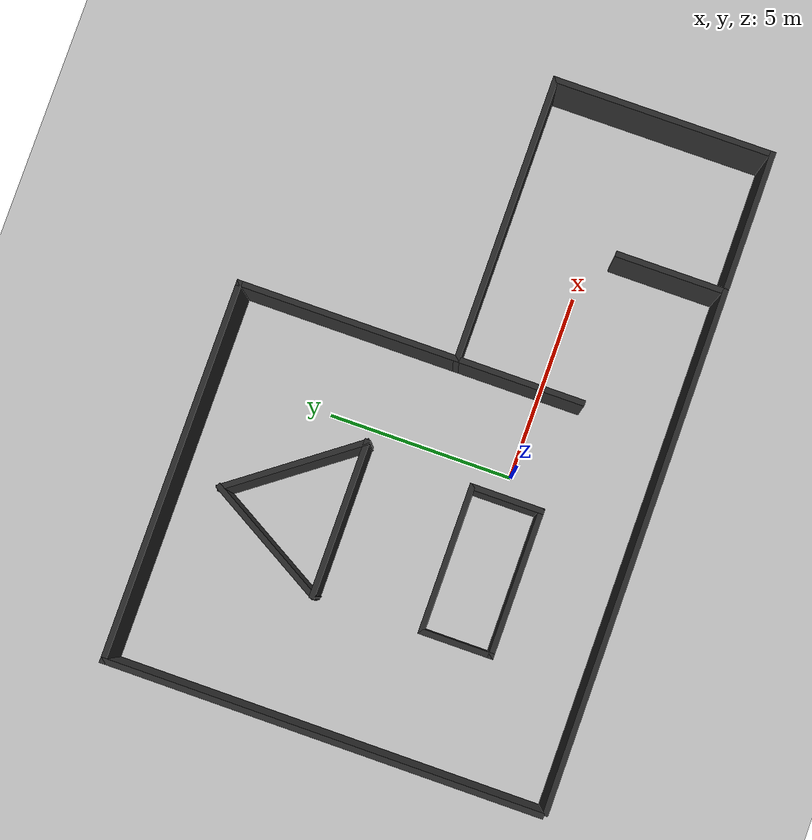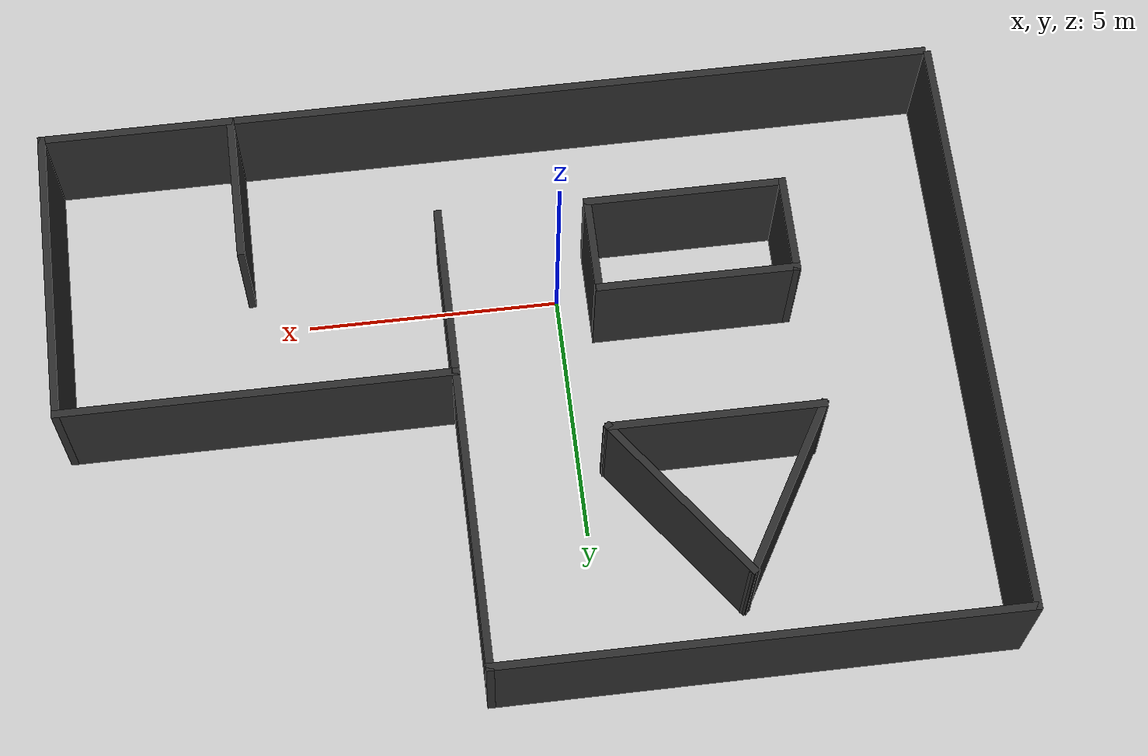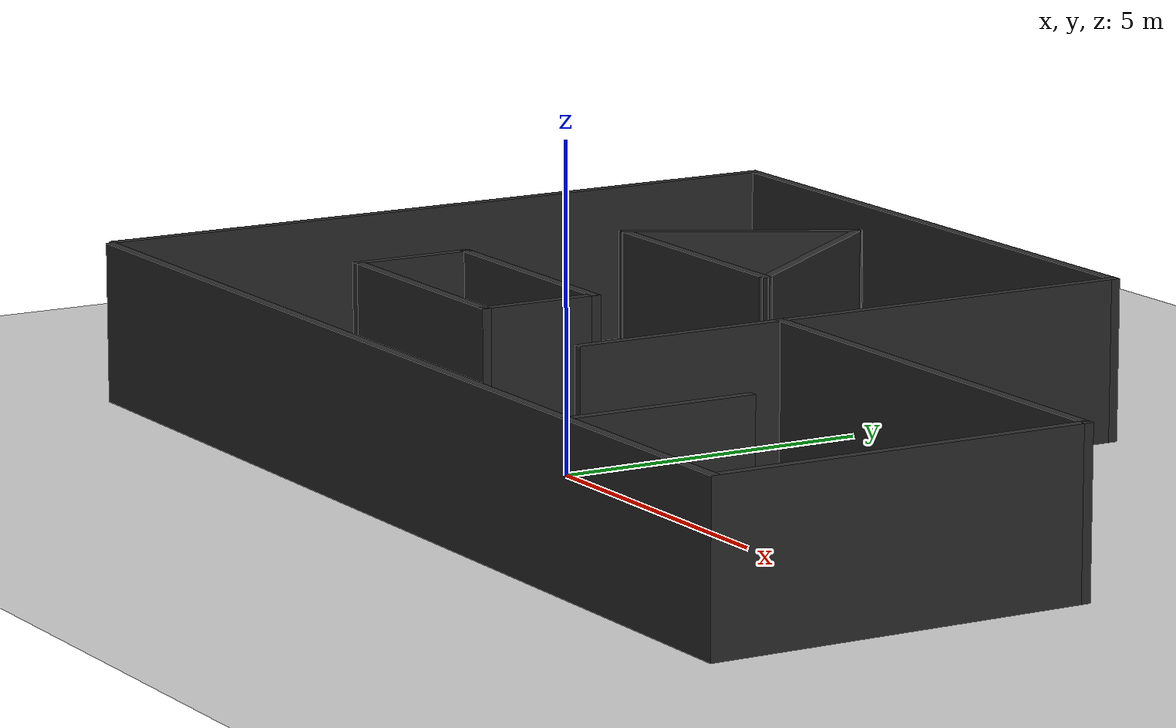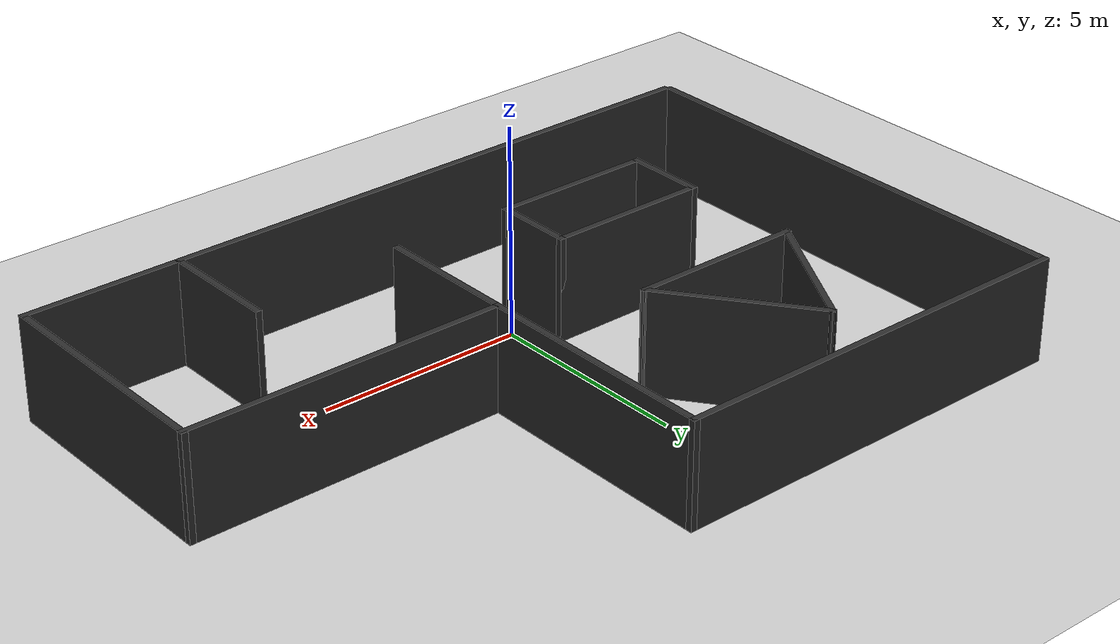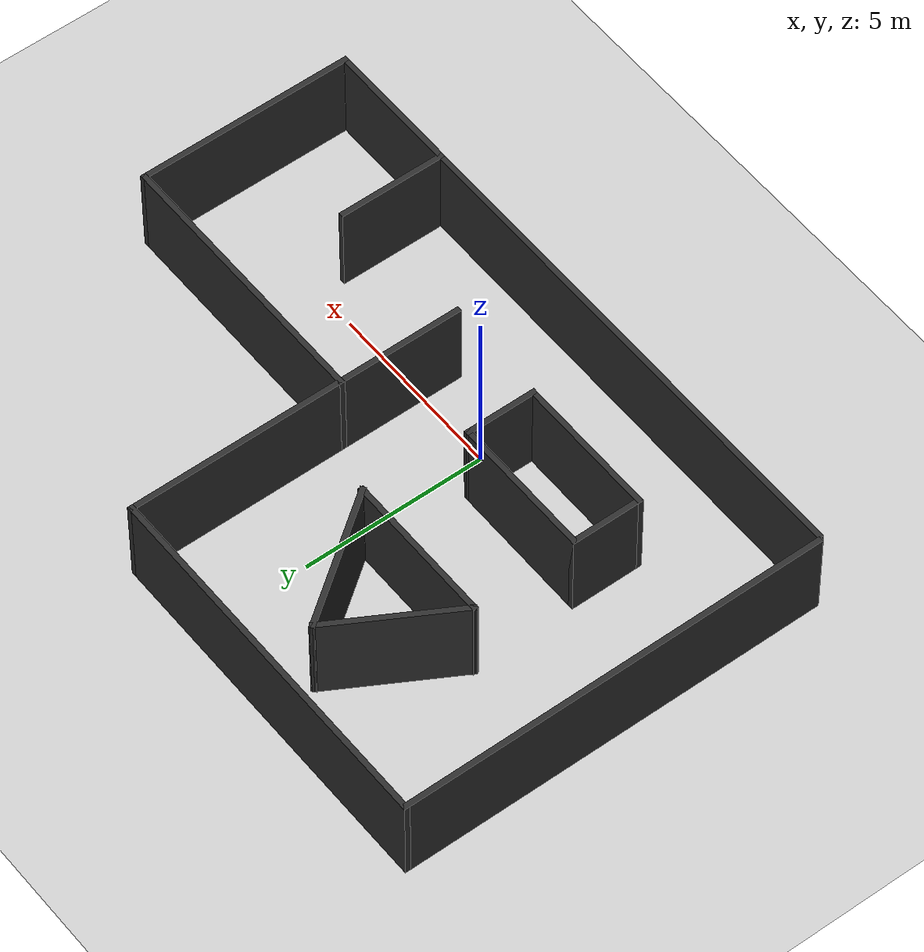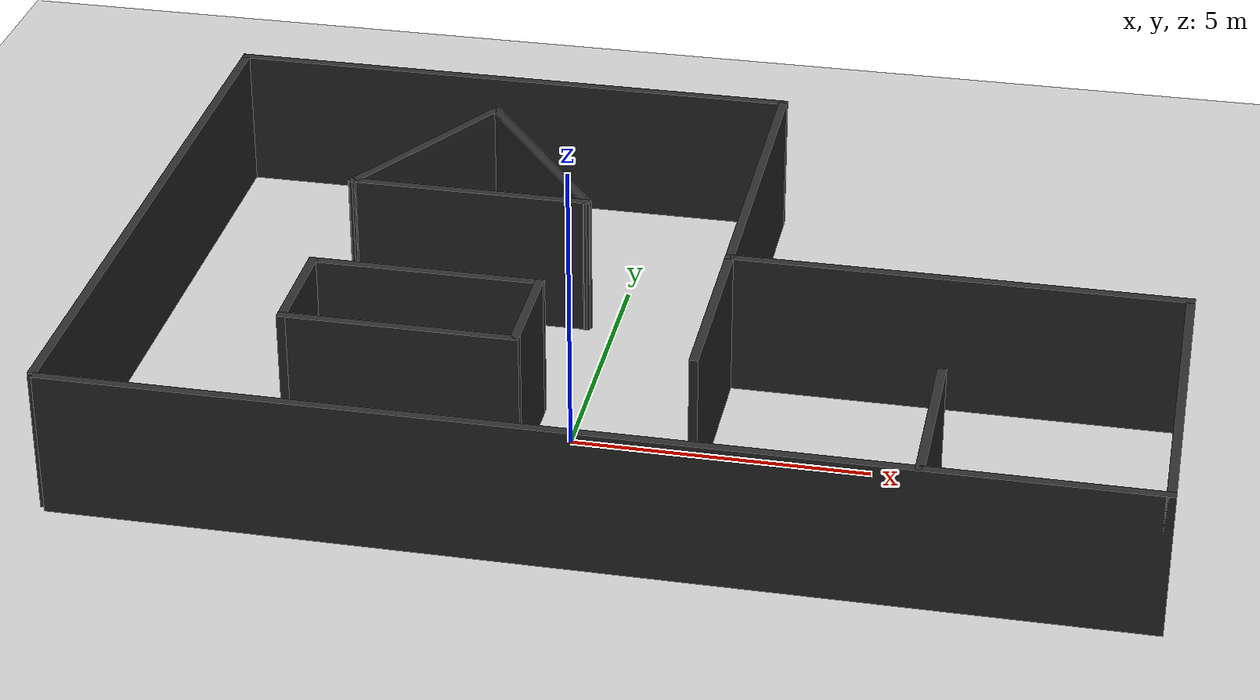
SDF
<?xml version="1.0" ?>
<sdf version="1.8">

  <world name="demo">

    <plugin
      filename="ignition-gazebo-physics-system"
      name="ignition::gazebo::systems::Physics">
    </plugin>

    <plugin
      filename="ignition-gazebo-sensors-system"
      name="ignition::gazebo::systems::Sensors">
      <render_engine>ogre2</render_engine>
    </plugin>

    <plugin
      filename="ignition-gazebo-scene-broadcaster-system"
      name="ignition::gazebo::systems::SceneBroadcaster">
    </plugin>

    <plugin
      filename="ignition-gazebo-user-commands-system"
      name="ignition::gazebo::systems::UserCommands">
    </plugin>

    <light name="sun" type="directional">
      <cast_shadows>false</cast_shadows>
      <pose>0 0 10 0 0 0</pose>
      <diffuse>0.8 0.8 0.8 1</diffuse>
      <specular>0.2 0.2 0.2 1</specular>
      <attenuation>
        <range>1000</range>
        <constant>0.9</constant>
        <linear>0.01</linear>
        <quadratic>0.001</quadratic>
      </attenuation>
      <direction>-0.5 0.1 -0.9</direction>
    </light>

    <model name="ground_plane">
      <static>true</static>
      <link name="link">
        <collision name="collision">
          <geometry>
            <plane>
              <normal>0 0 1</normal>
              <size>100 100</size>
            </plane>
          </geometry>
        </collision>
        <visual name="visual">
          <geometry>
            <plane>
              <normal>0 0 1</normal>
              <size>100 100</size>
            </plane>
          </geometry>
          <material>
            <ambient>0.8 0.8 0.8 1</ambient>
            <diffuse>0.8 0.8 0.8 1</diffuse>
            <specular>0.8 0.8 0.8 1</specular>
          </material>
        </visual>
      </link>
    </model>

    <model name="ambiente_0">
      <self_collide>false</self_collide>
      <pose>0 0 0 0 0 0</pose>
      <include merge="true">
        <uri>model://ambiente_0</uri>
      </include>
    </model>

  </world>

</sdf>

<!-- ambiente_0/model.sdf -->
<sdf version='1.8'>

  <model name='ambiente_0'>

    <pose>0.989121 2.29632 0 0 -0 0</pose>
    <static>1</static>

    <link name='Wall_10'>

      <collision name='Wall_10_Collision'>
        <geometry>
          <box>
            <size>4.25 0.15 2.5</size>
          </box>
        </geometry>
        <pose>0 0 1.25 0 -0 0</pose>
      </collision>

      <visual name='Wall_10_Visual'>
        <pose>0 0 1.25 0 -0 0</pose>
        <geometry>
          <box>
            <size>4.25 0.15 2.5</size>
          </box>
        </geometry>
        <material>
          <ambient>0.175 0.175 0.175 1</ambient>
          <diffuse>0.175 0.175 0.175 1</diffuse>
          <specular>0.175 0.175 0.175 1</specular>
        </material>
        <meta>
          <layer>0</layer>
        </meta>
      </visual>

      <pose>-3.54277 1.44649 0 0 -0 0</pose>

    </link>

    <link name='Wall_11'>

      <collision name='Wall_11_Collision'>
        <geometry>
          <box>
            <size>4.02427 0.15 2.5</size>
          </box>
        </geometry>
        <pose>0 0 1.25 0 -0 0</pose>
      </collision>

      <visual name='Wall_11_Visual'>
        <pose>0 0 1.25 0 -0 0</pose>
        <geometry>
          <box>
            <size>4.02427 0.15 2.5</size>
          </box>
        </geometry>
        <material>
          <ambient>0.175 0.175 0.175 1</ambient>
          <diffuse>0.175 0.175 0.175 1</diffuse>
          <specular>0.175 0.175 0.175 1</specular>
        </material>
        <meta>
          <layer>0</layer>
        </meta>
      </visual>

      <pose>-2.64277 3.00533 0 0 -0 2.2064</pose>

    </link>

    <link name='Wall_13'>

      <collision name='Wall_13_Collision'>
        <geometry>
          <box>
            <size>3 0.15 2.5</size>
          </box>
        </geometry>
        <pose>0 0 1.25 0 -0 0</pose>
      </collision>

      <visual name='Wall_13_Visual'>
        <pose>0 0 1.25 0 -0 0</pose>
        <geometry>
          <box>
            <size>3 0.15 2.5</size>
          </box>
        </geometry>
        <material>
          <ambient>0.175 0.175 0.175 1</ambient>
          <diffuse>0.175 0.175 0.175 1</diffuse>
          <specular>0.175 0.175 0.175 1</specular>
        </material>
        <meta>
          <layer>0</layer>
        </meta>
      </visual>

      <pose>5.11956 -4.41361 0 0 -0 1.5708</pose>

    </link>

    <link name='Wall_15'>

      <collision name='Wall_15_Collision'>
        <geometry>
          <box>
            <size>3.5 0.15 2.5</size>
          </box>
        </geometry>
        <pose>0 0 1.25 0 -0 0</pose>
      </collision>

      <visual name='Wall_15_Visual'>
        <pose>0 0 1.25 0 -0 0</pose>
        <geometry>
          <box>
            <size>3.5 0.15 2.5</size>
          </box>
        </geometry>
        <material>
          <ambient>0.175 0.175 0.175 1</ambient>
          <diffuse>0.175 0.175 0.175 1</diffuse>
          <specular>0.175 0.175 0.175 1</specular>
        </material>
        <meta>
          <layer>0</layer>
        </meta>
      </visual>

      <pose>1.25 -1.675 0 0 -0 -1.5708</pose>

    </link>

    <link name='Wall_17'>

      <collision name='Wall_17_Collision'>
        <geometry>
          <box>
            <size>4 0.15 2.5</size>
          </box>
        </geometry>
        <pose>0 0 1.25 0 -0 0</pose>
      </collision>

      <visual name='Wall_17_Visual'>
        <pose>0 0 1.25 0 -0 0</pose>
        <geometry>
          <box>
            <size>4 0.15 2.5</size>
          </box>
        </geometry>
        <material>
          <ambient>0.175 0.175 0.175 1</ambient>
          <diffuse>0.175 0.175 0.175 1</diffuse>
          <specular>0.175 0.175 0.175 1</specular>
        </material>
        <meta>
          <layer>0</layer>
        </meta>
      </visual>

      <pose>-3.60156 -1.42807 0 0 -0 0</pose>

    </link>

    <link name='Wall_18'>

      <collision name='Wall_18_Collision'>
        <geometry>
          <box>
            <size>2 0.15 2.5</size>
          </box>
        </geometry>
        <pose>0 0 1.25 0 -0 0</pose>
      </collision>

      <visual name='Wall_18_Visual'>
        <pose>0 0 1.25 0 -0 0</pose>
        <geometry>
          <box>
            <size>2 0.15 2.5</size>
          </box>
        </geometry>
        <material>
          <ambient>0.175 0.175 0.175 1</ambient>
          <diffuse>0.175 0.175 0.175 1</diffuse>
          <specular>0.175 0.175 0.175 1</specular>
        </material>
        <meta>
          <layer>0</layer>
        </meta>
      </visual>

      <pose>-1.67657 -2.35307 0 0 -0 -1.5708</pose>

    </link>

    <link name='Wall_19'>

      <collision name='Wall_19_Collision'>
        <geometry>
          <box>
            <size>4 0.15 2.5</size>
          </box>
        </geometry>
        <pose>0 0 1.25 0 -0 0</pose>
      </collision>

      <visual name='Wall_19_Visual'>
        <pose>0 0 1.25 0 -0 0</pose>
        <geometry>
          <box>
            <size>4 0.15 2.5</size>
          </box>
        </geometry>
        <material>
          <ambient>0.175 0.175 0.175 1</ambient>
          <diffuse>0.175 0.175 0.175 1</diffuse>
          <specular>0.175 0.175 0.175 1</specular>
        </material>
        <meta>
          <layer>0</layer>
        </meta>
      </visual>

      <pose>-3.60156 -3.27807 0 0 -0 3.14159</pose>

    </link>

    <link name='Wall_2'>

      <collision name='Wall_2_Collision'>
        <geometry>
          <box>
            <size>17.75 0.15 2.5</size>
          </box>
        </geometry>
        <pose>0 0 1.25 0 -0 0</pose>
      </collision>

      <visual name='Wall_2_Visual'>
        <pose>0 0 1.25 0 -0 0</pose>
        <geometry>
          <box>
            <size>17.75 0.15 2.5</size>
          </box>
        </geometry>
        <material>
          <ambient>0.175 0.175 0.175 1</ambient>
          <diffuse>0.175 0.175 0.175 1</diffuse>
          <specular>0.175 0.175 0.175 1</specular>
        </material>
        <meta>
          <layer>0</layer>
        </meta>
      </visual>

      <pose>0.05 -5.85 0 0 -0 0</pose>

    </link>

    <link name='Wall_20'>

      <collision name='Wall_20_Collision'>
        <geometry>
          <box>
            <size>2 0.15 2.5</size>
          </box>
        </geometry>
        <pose>0 0 1.25 0 -0 0</pose>
      </collision>

      <visual name='Wall_20_Visual'>
        <pose>0 0 1.25 0 -0 0</pose>
        <geometry>
          <box>
            <size>2 0.15 2.5</size>
          </box>
        </geometry>
        <material>
          <ambient>0.175 0.175 0.175 1</ambient>
          <diffuse>0.175 0.175 0.175 1</diffuse>
          <specular>0.175 0.175 0.175 1</specular>
        </material>
        <meta>
          <layer>0</layer>
        </meta>
      </visual>

      <pose>-5.52656 -2.35307 0 0 -0 1.5708</pose>

    </link>

    <link name='Wall_3'>

      <collision name='Wall_3_Collision'>
        <geometry>
          <box>
            <size>6 0.15 2.5</size>
          </box>
        </geometry>
        <pose>0 0 1.25 0 -0 0</pose>
      </collision>

      <visual name='Wall_3_Visual'>
        <pose>0 0 1.25 0 -0 0</pose>
        <geometry>
          <box>
            <size>6 0.15 2.5</size>
          </box>
        </geometry>
        <material>
          <ambient>0.175 0.175 0.175 1</ambient>
          <diffuse>0.175 0.175 0.175 1</diffuse>
          <specular>0.175 0.175 0.175 1</specular>
        </material>
        <meta>
          <layer>0</layer>
        </meta>
      </visual>

      <pose>8.85 -2.925 0 0 -0 1.5708</pose>

    </link>

    <link name='Wall_4'>

      <collision name='Wall_4_Collision'>
        <geometry>
          <box>
            <size>7.75 0.15 2.5</size>
          </box>
        </geometry>
        <pose>0 0 1.25 0 -0 0</pose>
      </collision>

      <visual name='Wall_4_Visual'>
        <pose>0 0 1.25 0 -0 0</pose>
        <geometry>
          <box>
            <size>7.75 0.15 2.5</size>
          </box>
        </geometry>
        <material>
          <ambient>0.175 0.175 0.175 1</ambient>
          <diffuse>0.175 0.175 0.175 1</diffuse>
          <specular>0.175 0.175 0.175 1</specular>
        </material>
        <meta>
          <layer>0</layer>
        </meta>
      </visual>

      <pose>5.05 -0 0 0 -0 3.14159</pose>

    </link>

    <link name='Wall_5'>

      <collision name='Wall_5_Collision'>
        <geometry>
          <box>
            <size>6 0.15 2.5</size>
          </box>
        </geometry>
        <pose>0 0 1.25 0 -0 0</pose>
      </collision>

      <visual name='Wall_5_Visual'>
        <pose>0 0 1.25 0 -0 0</pose>
        <geometry>
          <box>
            <size>6 0.15 2.5</size>
          </box>
        </geometry>
        <material>
          <ambient>0.175 0.175 0.175 1</ambient>
          <diffuse>0.175 0.175 0.175 1</diffuse>
          <specular>0.175 0.175 0.175 1</specular>
        </material>
        <meta>
          <layer>0</layer>
        </meta>
      </visual>

      <pose>1.25 2.925 0 0 -0 1.5708</pose>

    </link>

    <link name='Wall_6'>

      <collision name='Wall_6_Collision'>
        <geometry>
          <box>
            <size>10.25 0.15 2.5</size>
          </box>
        </geometry>
        <pose>0 0 1.25 0 -0 0</pose>
      </collision>

      <visual name='Wall_6_Visual'>
        <pose>0 0 1.25 0 -0 0</pose>
        <geometry>
          <box>
            <size>10.25 0.15 2.5</size>
          </box>
        </geometry>
        <material>
          <ambient>0.175 0.175 0.175 1</ambient>
          <diffuse>0.175 0.175 0.175 1</diffuse>
          <specular>0.175 0.175 0.175 1</specular>
        </material>
        <meta>
          <layer>0</layer>
        </meta>
      </visual>

      <pose>-3.8 5.85 0 0 -0 3.14159</pose>

    </link>

    <link name='Wall_7'>

      <collision name='Wall_7_Collision'>
        <geometry>
          <box>
            <size>11.75 0.15 2.5</size>
          </box>
        </geometry>
        <pose>0 0 1.25 0 -0 0</pose>
      </collision>

      <visual name='Wall_7_Visual'>
        <pose>0 0 1.25 0 -0 0</pose>
        <geometry>
          <box>
            <size>11.75 0.15 2.5</size>
          </box>
        </geometry>
        <material>
          <ambient>0.175 0.175 0.175 1</ambient>
          <diffuse>0.175 0.175 0.175 1</diffuse>
          <specular>0.175 0.175 0.175 1</specular>
        </material>
        <meta>
          <layer>0</layer>
        </meta>
      </visual>

      <pose>-8.85 0.05 0 0 -0 -1.5708</pose>

    </link>

    <link name='Wall_9'>

      <collision name='Wall_9_Collision'>
        <geometry>
          <box>
            <size>3.75 0.15 2.5</size>
          </box>
        </geometry>
        <pose>0 0 1.25 0 -0 0</pose>
      </collision>

      <visual name='Wall_9_Visual'>
        <pose>0 0 1.25 0 -0 0</pose>
        <geometry>
          <box>
            <size>3.75 0.15 2.5</size>
          </box>
        </geometry>
        <material>
          <ambient>0.175 0.175 0.175 1</ambient>
          <diffuse>0.175 0.175 0.175 1</diffuse>
          <specular>0.175 0.175 0.175 1</specular>
        </material>
        <meta>
          <layer>0</layer>
        </meta>
      </visual>

      <pose>-4.69277 3.00533 0 0 -0 -2.0944</pose>

    </link>

  </model>

</sdf>
